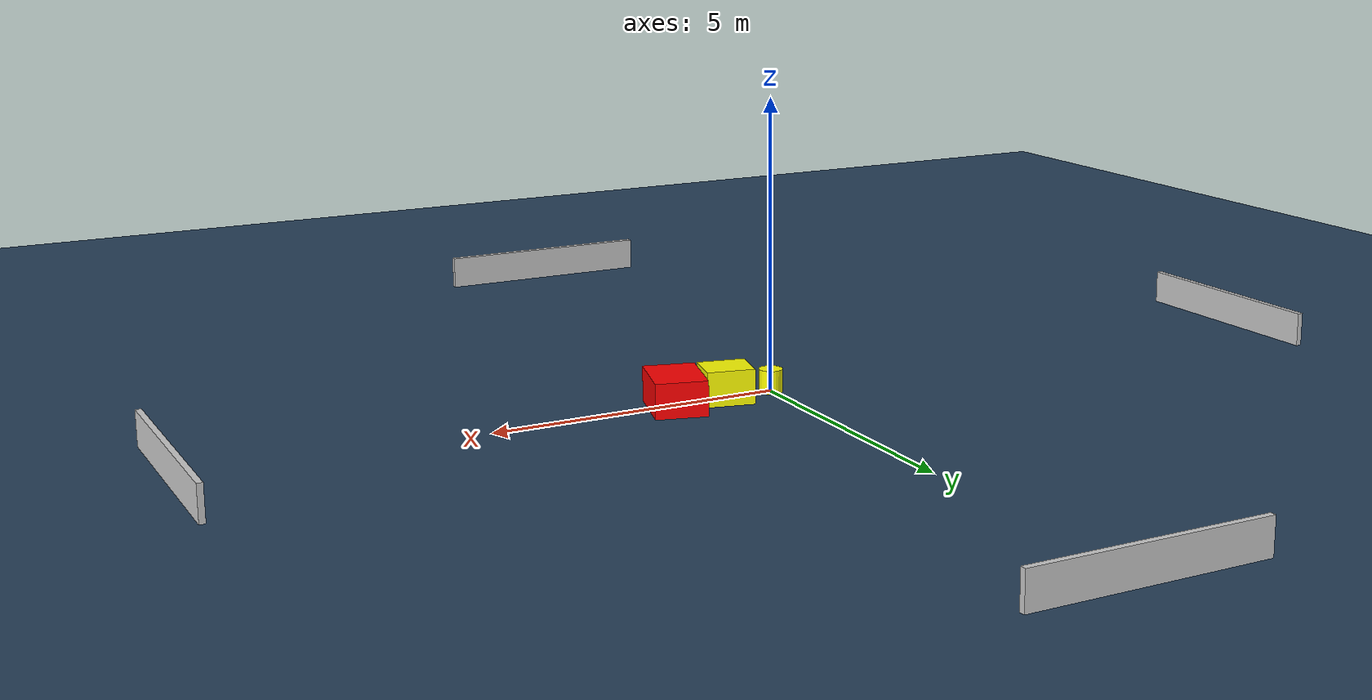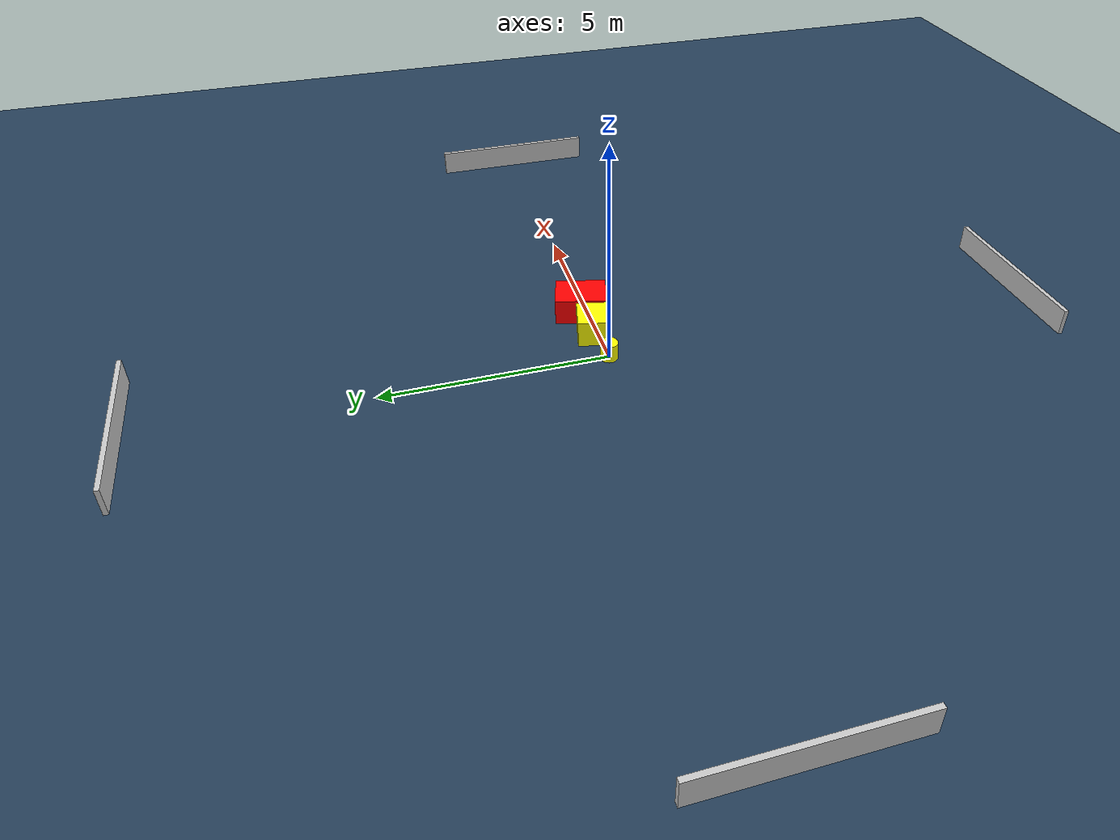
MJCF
<?xml version="1.0" ?>
<mujoco model="generated_environment">
  <option timestep="0.01" integrator="RK4" cone="elliptic"/>
  <default>
    <geom density="1"/>
  </default>
  <asset>
    <texture builtin="gradient" height="3072" name="skybox" rgb1="0.3 0.5 0.7" rgb2="0 0 0" type="skybox" width="512"/>
    <texture builtin="checker" height="300" name="groundplane" rgb1="0.2 0.3 0.4" rgb2="0.1 0.2 0.3" type="2d" width="300"/>
    <material name="groundplane" reflectance="0.2" texrepeat="5 5" texture="groundplane"/>
  </asset>
  <worldbody>
    <light dir="0 0 -1" directional="true" pos="0 0 1.5"/>
    <geom condim="3" friction="0.5 0.005 0.001" material="groundplane" name="floor" pos="0 0 0" size="0 0 0.05" type="plane"/>
    <body name="walls">
      <geom name="wall_1" condim="4" pos="-10.0 0.0 0.3" rgba="0.800000011920929 0.800000011920929 0.800000011920929 1.0" size="0.05 2.0 0.3" type="box"/>
      <geom name="wall_2" condim="4" pos="10.0 0.0 0.3" rgba="0.800000011920929 0.800000011920929 0.800000011920929 1.0" size="0.05 2.0 0.3" type="box"/>
      <geom name="wall_3" condim="4" pos="0.0 -10.0 0.3" rgba="0.800000011920929 0.800000011920929 0.800000011920929 1.0" size="2.0 0.05 0.3" type="box"/>
      <geom name="wall_4" condim="4" pos="0.0 10.0 0.3" rgba="0.800000011920929 0.800000011920929 0.800000011920929 1.0" size="2.0 0.05 0.3" type="box"/>
    </body>
    <body name="robot">
      <joint name="joint_x" type="slide" pos="0 0 0" axis="1 0 0"/>
      <joint name="joint_y" type="slide" pos="0 0 0" axis="0 1 0"/>
      <geom name="robot" type="cylinder" pos="0.0 0.0 0.2" size="0.2 0.2 0.0" mass="5.0" friction="1.0 0.005 0.0001" condim="4" rgba="1.0 1.0 0.0 1.0"/>
    </body>
    <body name="obstacle_1_movable">
      <geom name="obstacle_1_movable" condim="4" pos="0.9120170294758149 0.11453564922721067 0.3" euler="0 0 347.69714962428424" friction="0.0 0.005 0.001" rgba="1.0 1.0 0.0 1.0" size="0.4087958251416972 0.3455143045203213 0.3" type="box" mass="0.1"/>
      <joint type="free"/>
    </body>
    <body name="obstacle_2_static">
      <geom name="obstacle_2_static" condim="4" pos="1.8612884987294052 0.13478289608012847 0.3" euler="0 0 164.98126240026676" friction="0.0 0.005 0.001" rgba="1.0 0.0 0.0 1.0" size="0.4399687101561274 0.5771531382232348 0.3" type="box"/>
    </body>
  </worldbody>
  <actuator>
    <motor name="actuator_x" joint="joint_x" gear="1" ctrlrange="-1 1"/>
    <motor name="actuator_y" joint="joint_y" gear="1" ctrlrange="-1 1"/>
  </actuator>
</mujoco>
